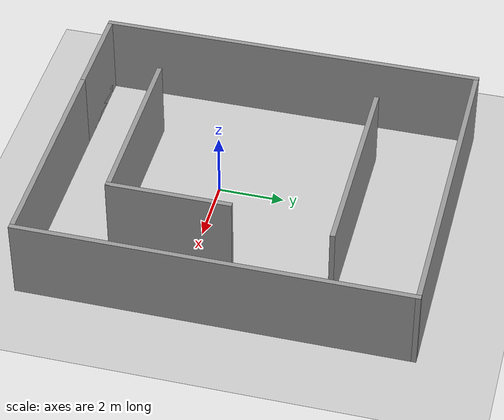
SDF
<sdf version="1.7">
 <world name="default">
  <light name="sun" type="directional">
   <pose>0 0 10 0 -0 0</pose>
   <diffuse>0.8 0.8 0.8 1</diffuse>
   <specular>0.2 0.2 0.2 1</specular>
   <attenuation>
    <range>1000</range>
    <constant>0.9</constant>
    <linear>0.01</linear>
    <quadratic>0.001</quadratic>
   </attenuation>
   <direction>-0.5 0.1 -0.9</direction>
   <spot><inner_angle>0</inner_angle><outer_angle>0</outer_angle><falloff>0</falloff></spot>
  </light>
  <model name="ground_plane">
   <static>1</static>
   <link name="link">
    <collision name="collision">
     <geometry><plane><normal>0 0 1</normal><size>100 100</size></plane></geometry>
     <surface>
      <contact><collide_bitmask>65535</collide_bitmask></contact>
      <friction><ode><mu>100</mu><mu2>50</mu2></ode></friction>
     </surface>
    </collision>
    <visual name="visual">
     <cast_shadows>0</cast_shadows>
     <geometry><plane><normal>0 0 1</normal><size>100 100</size></plane></geometry>
     <material>
      <script><uri>file://media/materials/scripts/gazebo.material</uri><name>Gazebo/Grey</name></script>
     </material>
    </visual>
   </link>
  </model>
  <gravity>0 0 -9.8</gravity>
  <magnetic_field>6e-06 2.3e-05 -4.2e-05</magnetic_field>
  <atmosphere type="adiabatic"/>
  <physics type="ode">
   <max_step_size>0.001</max_step_size>
   <real_time_factor>1</real_time_factor>
   <real_time_update_rate>1000</real_time_update_rate>
  </physics>
  <scene><ambient>0.4 0.4 0.4 1</ambient><background>0.7 0.7 0.7 1</background><shadows>1</shadows></scene>
  <spherical_coordinates>
   <surface_model>EARTH_WGS84</surface_model>
   <latitude_deg>0</latitude_deg>
   <longitude_deg>0</longitude_deg>
   <elevation>0</elevation>
   <heading_deg>0</heading_deg>
  </spherical_coordinates>
  <model name="Untitled">
   <pose>0.71 1.23 0 0 -0 0</pose>
   <link name="Wall_1">
    <collision name="Wall_1_Collision">
     <geometry><box><size>9.25 0.15 2.5</size></box></geometry>
     <pose>0 0 1.25 0 -0 0</pose>
    </collision>
    <visual name="Wall_1_Visual">
     <pose>0 0 1.25 0 -0 0</pose>
     <geometry><box><size>9.25 0.15 2.5</size></box></geometry>
     <material>
      <script><uri>file://media/materials/scripts/gazebo.material</uri><name>Gazebo/Grey</name></script>
      <ambient>1 1 1 1</ambient>
     </material>
     <meta><layer>0</layer></meta>
    </visual>
    <pose>0.25 -5.8 0 0 -0 0</pose>
   </link>
   <link name="Wall_10">
    <collision name="Wall_10_Collision">
     <geometry><box><size>5.5 0.15 2.5</size></box></geometry>
     <pose>0 0 1.25 0 -0 0</pose>
    </collision>
    <visual name="Wall_10_Visual">
     <pose>0 0 1.25 0 -0 0</pose>
     <geometry><box><size>5.5 0.15 2.5</size></box></geometry>
     <material>
      <script><uri>file://media/materials/scripts/gazebo.material</uri><name>Gazebo/Grey</name></script>
      <ambient>1 1 1 1</ambient>
     </material>
     <meta><layer>0</layer></meta>
    </visual>
    <pose>-0.218704 -3.6861 0 0 -0 0</pose>
   </link>
   <link name="Wall_11">
    <collision name="Wall_11_Collision">
     <geometry><box><size>3.75 0.15 2.5</size></box></geometry>
     <pose>0 0 1.25 0 -0 0</pose>
    </collision>
    <visual name="Wall_11_Visual">
     <pose>0 0 1.25 0 -0 0</pose>
     <geometry><box><size>3.75 0.15 2.5</size></box></geometry>
     <material>
      <script><uri>file://media/materials/scripts/gazebo.material</uri><name>Gazebo/Grey</name></script>
      <ambient>1 1 1 1</ambient>
     </material>
     <meta><layer>0</layer></meta>
    </visual>
    <pose>2.4563 -1.8861 0 0 -0 1.5708</pose>
   </link>
   <link name="Wall_13">
    <collision name="Wall_13_Collision">
     <geometry><box><size>6.25 0.15 2.5</size></box></geometry>
     <pose>0 0 1.25 0 -0 0</pose>
    </collision>
    <visual name="Wall_13_Visual">
     <pose>0 0 1.25 0 -0 0</pose>
     <geometry><box><size>6.25 0.15 2.5</size></box></geometry>
     <material>
      <script><uri>file://media/materials/scripts/gazebo.material</uri><name>Gazebo/Grey</name></script>
      <ambient>1 1 1 1</ambient>
     </material>
     <meta><layer>0</layer></meta>
    </visual>
    <pose>-0.086438 3.02953 0 0 -0 0</pose>
   </link>
   <link name="Wall_2">
    <collision name="Wall_2_Collision">
     <geometry><box><size>11.75 0.15 2.5</size></box></geometry>
     <pose>0 0 1.25 0 -0 0</pose>
    </collision>
    <visual name="Wall_2_Visual">
     <pose>0 0 1.25 0 -0 0</pose>
     <geometry><box><size>11.75 0.15 2.5</size></box></geometry>
     <material>
      <script><uri>file://media/materials/scripts/gazebo.material</uri><name>Gazebo/Grey</name></script>
      <ambient>1 1 1 1</ambient>
     </material>
     <meta><layer>0</layer></meta>
    </visual>
    <pose>4.8 0 0 0 -0 1.5708</pose>
   </link>
   <link name="Wall_3">
    <collision name="Wall_3_Collision">
     <geometry><box><size>9.75 0.15 2.5</size></box></geometry>
     <pose>0 0 1.25 0 -0 0</pose>
    </collision>
    <visual name="Wall_3_Visual">
     <pose>0 0 1.25 0 -0 0</pose>
     <geometry><box><size>9.75 0.15 2.5</size></box></geometry>
     <material>
      <script><uri>file://media/materials/scripts/gazebo.material</uri><name>Gazebo/Grey</name></script>
      <ambient>1 1 1 1</ambient>
     </material>
     <meta><layer>0</layer></meta>
    </visual>
    <pose>-0 5.8 0 0 -0 3.14159</pose>
   </link>
   <link name="Wall_6">
    <collision name="Wall_6_Collision">
     <geometry><box><size>11.75 0.15 2.5</size></box></geometry>
     <pose>0 0 1.25 0 -0 0</pose>
    </collision>
    <visual name="Wall_6_Visual">
     <pose>0 0 1.25 0 -0 0</pose>
     <geometry><box><size>11.75 0.15 2.5</size></box></geometry>
     <material>
      <script><uri>file://media/materials/scripts/gazebo.material</uri><name>Gazebo/Grey</name></script>
      <ambient>1 1 1 1</ambient>
     </material>
     <meta><layer>0</layer></meta>
    </visual>
    <pose>-4.8 0 0 0 -0 -1.5708</pose>
   </link>
   <link name="Wall_7">
    <collision name="Wall_7_Collision">
     <geometry><box><size>3 0.15 2.5</size></box></geometry>
     <pose>0 0 1.25 0 -0 0</pose>
    </collision>
    <visual name="Wall_7_Visual">
     <pose>0 0 1.25 0 -0 0</pose>
     <geometry><box><size>3 0.15 2.5</size></box></geometry>
     <material>
      <script><uri>file://media/materials/scripts/gazebo.material</uri><name>Gazebo/Grey</name></script>
      <ambient>1 1 1 1</ambient>
     </material>
     <meta><layer>0</layer></meta>
    </visual>
    <pose>-3.375 -5.8 0 0 -0 0</pose>
   </link>
   <static>1</static>
  </model>
 </world>
</sdf>
